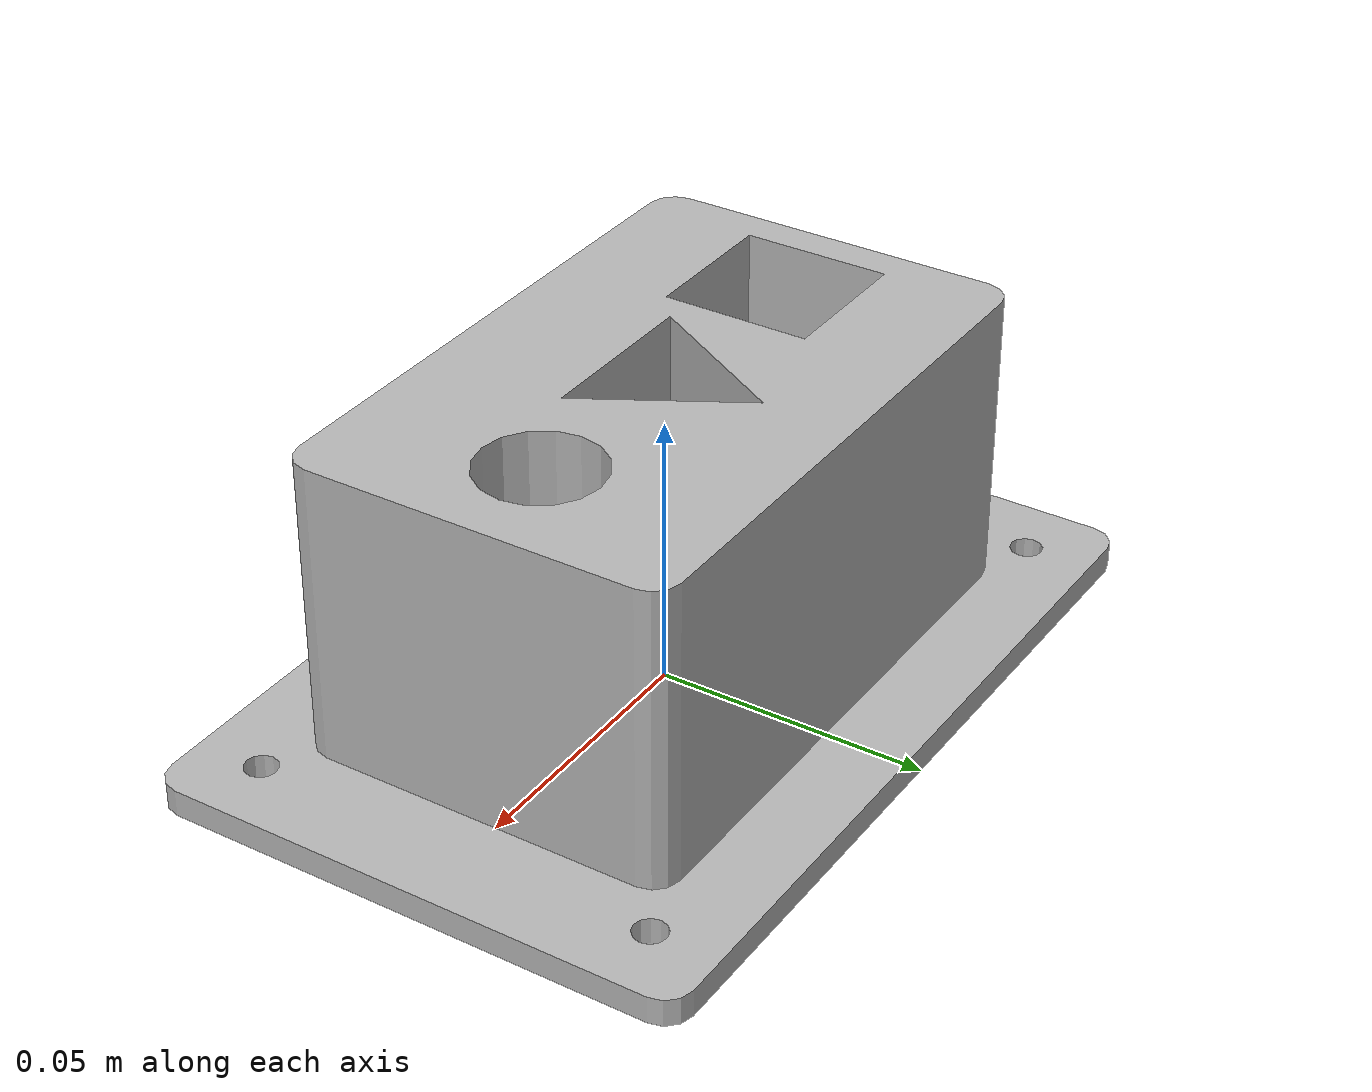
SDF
<sdf version='1.7'>
  <model name='platform'>
    <link name='base_link'>
      <inertial>
        <pose>0.001633 0.027078 0 0 -0 0</pose>
        <mass>0.411257</mass>
        <inertia>
          <ixx>0.000368805</ixx>
          <ixy>-3.64122e-06</ixy>
          <ixz>1.29127e-18</ixz>
          <iyy>0.000710408</iyy>
          <iyz>-4.25569e-18</iyz>
          <izz>0.000621391</izz>
        </inertia>
      </inertial>
      <collision concave='yes' name='base_link_collision'>
        <pose>0 0 0 0 -0 0</pose>
        <geometry>
          <mesh>
            <scale>1 1 1</scale>
            <uri>/home/zhou/autolab/imitation_learning_idp3/assert/ur_description/urdf/platform/meshes/base_link.STL</uri>
          </mesh>
        </geometry>
      </collision>
      <visual name='base_link_visual'>
        <pose>0 0 0 0 -0 0</pose>
        <geometry>
          <mesh>
            <scale>1 1 1</scale>
            <uri>/home/zhou/autolab/imitation_learning_idp3/assert/ur_description/urdf/platform/meshes/base_link.STL</uri>
          </mesh>
        </geometry>
      </visual>
    </link>
    <static>1</static>
    <allow_auto_disable>1</allow_auto_disable>
  </model>
</sdf>
